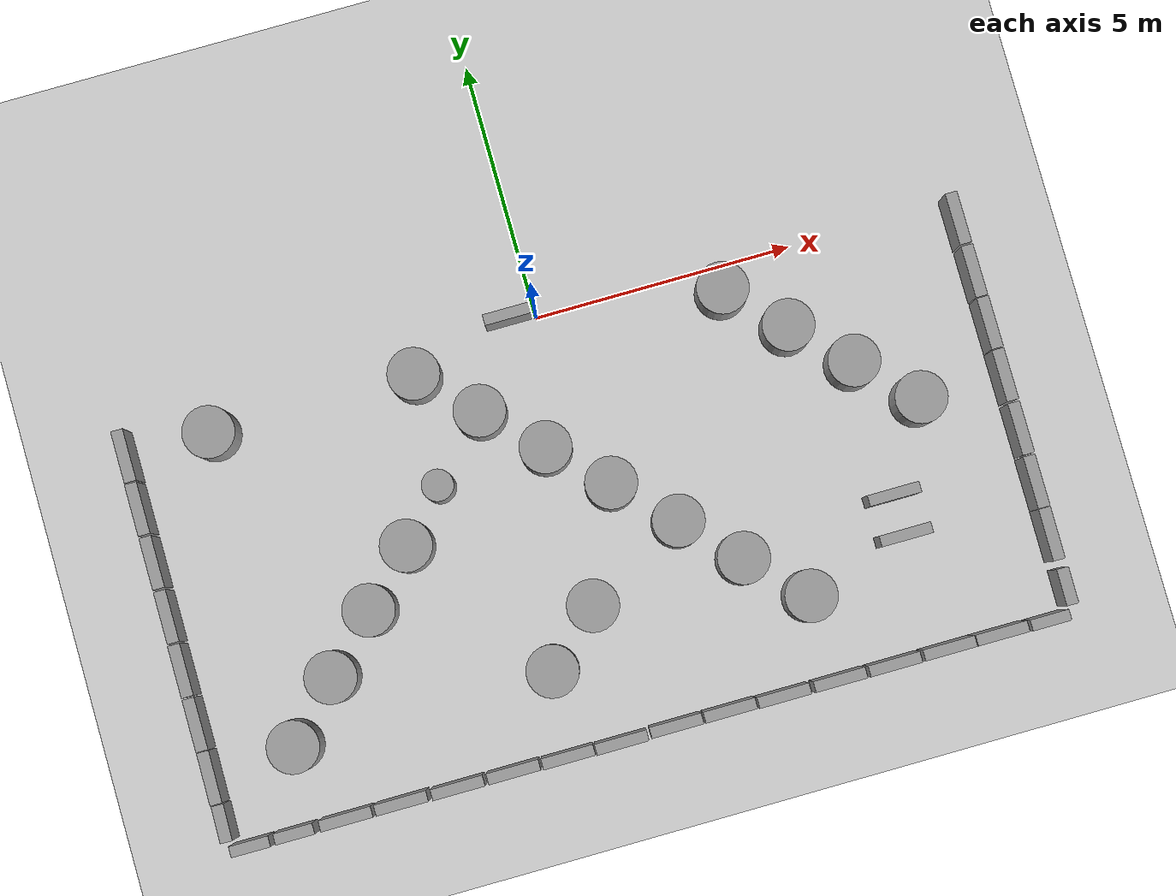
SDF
<sdf version="1.6">
 <world name="default">
  <model name="ground_plane">
   <static>1</static>
   <static>1</static>
   <link name="link">
    <collision name="collision">
     <geometry><plane><normal>0 0 1</normal><size>100 100</size></plane></geometry>
     <surface><friction><ode><mu>100</mu><mu2>50</mu2></ode></friction></surface>
    </collision>
    <visual name="visual">
     <cast_shadows>0</cast_shadows>
     <geometry><plane><normal>0 0 1</normal><size>100 100</size></plane></geometry>
     <material>
      <script><uri>file://media/materials/scripts/gazebo.material</uri><name>Gazebo/Grey</name></script>
     </material>
    </visual>
   </link>
  </model>
  <model name="unit_box_0_clone_7">
   <pose>8.11276 -0.44932 0.5 0 -0 0.00012</pose>
   <link name="link">
    <inertial>
     <mass>1</mass>
     <inertia>
      <ixx>0.166667</ixx>
      <ixy>0</ixy>
      <ixz>0</ixz>
      <iyy>0.166667</iyy>
      <iyz>0</iyz>
      <izz>0.166667</izz>
     </inertia>
    </inertial>
    <collision name="collision"><geometry><box><size>0.230819 1 1</size></box></geometry></collision>
    <visual name="visual">
     <geometry><box><size>0.230819 1 1</size></box></geometry>
     <material>
      <script><name>Gazebo/Grey</name><uri>file://media/materials/scripts/gazebo.material</uri></script>
     </material>
    </visual>
   </link>
  </model>
  <model name="unit_box_0_clone_8">
   <pose>8.11912 -1.48629 0.5 0 -0 0.00012</pose>
   <link name="link">
    <inertial>
     <mass>1</mass>
     <inertia>
      <ixx>0.166667</ixx>
      <ixy>0</ixy>
      <ixz>0</ixz>
      <iyy>0.166667</iyy>
      <iyz>0</iyz>
      <izz>0.166667</izz>
     </inertia>
    </inertial>
    <collision name="collision"><geometry><box><size>0.230819 1 1</size></box></geometry></collision>
    <visual name="visual">
     <geometry><box><size>0.230819 1 1</size></box></geometry>
     <material>
      <script><name>Gazebo/Grey</name><uri>file://media/materials/scripts/gazebo.material</uri></script>
     </material>
    </visual>
   </link>
  </model>
  <model name="unit_box_0_clone_9">
   <pose>8.12548 -2.5042 0.5 0 -0 0.00012</pose>
   <link name="link">
    <inertial>
     <mass>1</mass>
     <inertia>
      <ixx>0.166667</ixx>
      <ixy>0</ixy>
      <ixz>0</ixz>
      <iyy>0.166667</iyy>
      <iyz>0</iyz>
      <izz>0.166667</izz>
     </inertia>
    </inertial>
    <collision name="collision"><geometry><box><size>0.230819 1 1</size></box></geometry></collision>
    <visual name="visual">
     <geometry><box><size>0.230819 1 1</size></box></geometry>
     <material>
      <script><name>Gazebo/Grey</name><uri>file://media/materials/scripts/gazebo.material</uri></script>
     </material>
    </visual>
   </link>
  </model>
  <model name="unit_box_0_clone_10">
   <pose>8.12331 -3.52223 0.5 0 -0 0.00012</pose>
   <link name="link">
    <inertial>
     <mass>1</mass>
     <inertia>
      <ixx>0.166667</ixx>
      <ixy>0</ixy>
      <ixz>0</ixz>
      <iyy>0.166667</iyy>
      <iyz>0</iyz>
      <izz>0.166667</izz>
     </inertia>
    </inertial>
    <collision name="collision"><geometry><box><size>0.230819 1 1</size></box></geometry></collision>
    <visual name="visual">
     <geometry><box><size>0.230819 1 1</size></box></geometry>
     <material>
      <script><name>Gazebo/Grey</name><uri>file://media/materials/scripts/gazebo.material</uri></script>
     </material>
    </visual>
   </link>
  </model>
  <model name="unit_box_0_clone_11">
   <pose>8.1233 -4.56316 0.5 0 -0 0.00012</pose>
   <link name="link">
    <inertial>
     <mass>1</mass>
     <inertia>
      <ixx>0.166667</ixx>
      <ixy>0</ixy>
      <ixz>0</ixz>
      <iyy>0.166667</iyy>
      <iyz>0</iyz>
      <izz>0.166667</izz>
     </inertia>
    </inertial>
    <collision name="collision"><geometry><box><size>0.230819 1 1</size></box></geometry></collision>
    <visual name="visual">
     <geometry><box><size>0.230819 1 1</size></box></geometry>
     <material>
      <script><name>Gazebo/Grey</name><uri>file://media/materials/scripts/gazebo.material</uri></script>
     </material>
    </visual>
   </link>
  </model>
  <model name="unit_box_0_clone_12">
   <pose>8.11815 -5.59377 0.5 0 -0 0.00012</pose>
   <link name="link">
    <inertial>
     <mass>1</mass>
     <inertia>
      <ixx>0.166667</ixx>
      <ixy>0</ixy>
      <ixz>0</ixz>
      <iyy>0.166667</iyy>
      <iyz>0</iyz>
      <izz>0.166667</izz>
     </inertia>
    </inertial>
    <collision name="collision"><geometry><box><size>0.230819 1 1</size></box></geometry></collision>
    <visual name="visual">
     <geometry><box><size>0.230819 1 1</size></box></geometry>
     <material>
      <script><name>Gazebo/Grey</name><uri>file://media/materials/scripts/gazebo.material</uri></script>
     </material>
    </visual>
   </link>
  </model>
  <model name="unit_box_0_clone_13">
   <pose>8.11333 -6.60776 0.5 0 0 -0.005491</pose>
   <link name="link">
    <inertial>
     <mass>1</mass>
     <inertia>
      <ixx>0.166667</ixx>
      <ixy>0</ixy>
      <ixz>0</ixz>
      <iyy>0.166667</iyy>
      <iyz>0</iyz>
      <izz>0.166667</izz>
     </inertia>
    </inertial>
    <collision name="collision"><geometry><box><size>0.230819 1 1</size></box></geometry></collision>
    <visual name="visual">
     <geometry><box><size>0.230819 1 1</size></box></geometry>
     <material>
      <script><name>Gazebo/Grey</name><uri>file://media/materials/scripts/gazebo.material</uri></script>
     </material>
    </visual>
   </link>
  </model>
  <model name="unit_box_clone_15_clone_0">
   <pose>6.71207 -8.13092 0.5 0 -0 0.000357</pose>
   <link name="link">
    <inertial>
     <mass>1</mass>
     <inertia>
      <ixx>0.166667</ixx>
      <ixy>0</ixy>
      <ixz>0</ixz>
      <iyy>0.166667</iyy>
      <iyz>0</iyz>
      <izz>0.166667</izz>
     </inertia>
    </inertial>
    <collision name="collision"><geometry><box><size>1 0.210541 1</size></box></geometry></collision>
    <visual name="visual">
     <geometry><box><size>1 0.210541 1</size></box></geometry>
     <material>
      <script><name>Gazebo/Grey</name><uri>file://media/materials/scripts/gazebo.material</uri></script>
     </material>
    </visual>
   </link>
  </model>
  <model name="unit_box_clone_15_clone_1">
   <pose>5.69715 -8.13091 0.5 0 -0 0.000357</pose>
   <link name="link">
    <inertial>
     <mass>1</mass>
     <inertia>
      <ixx>0.166667</ixx>
      <ixy>0</ixy>
      <ixz>0</ixz>
      <iyy>0.166667</iyy>
      <iyz>0</iyz>
      <izz>0.166667</izz>
     </inertia>
    </inertial>
    <collision name="collision"><geometry><box><size>1 0.210541 1</size></box></geometry></collision>
    <visual name="visual">
     <geometry><box><size>1 0.210541 1</size></box></geometry>
     <material>
      <script><name>Gazebo/Grey</name><uri>file://media/materials/scripts/gazebo.material</uri></script>
     </material>
    </visual>
   </link>
  </model>
  <model name="unit_box_clone_15_clone_2">
   <pose>4.63881 -8.1371 0.5 0 -0 0.000357</pose>
   <link name="link">
    <inertial>
     <mass>1</mass>
     <inertia>
      <ixx>0.166667</ixx>
      <ixy>0</ixy>
      <ixz>0</ixz>
      <iyy>0.166667</iyy>
      <iyz>0</iyz>
      <izz>0.166667</izz>
     </inertia>
    </inertial>
    <collision name="collision"><geometry><box><size>1 0.210541 1</size></box></geometry></collision>
    <visual name="visual">
     <geometry><box><size>1 0.210541 1</size></box></geometry>
     <material>
      <script><name>Gazebo/Grey</name><uri>file://media/materials/scripts/gazebo.material</uri></script>
     </material>
    </visual>
   </link>
  </model>
  <model name="unit_box_clone_15_clone_3">
   <pose>3.57975 -8.1371 0.5 0 -0 0.000357</pose>
   <link name="link">
    <inertial>
     <mass>1</mass>
     <inertia>
      <ixx>0.166667</ixx>
      <ixy>0</ixy>
      <ixz>0</ixz>
      <iyy>0.166667</iyy>
      <iyz>0</iyz>
      <izz>0.166667</izz>
     </inertia>
    </inertial>
    <collision name="collision"><geometry><box><size>1 0.210541 1</size></box></geometry></collision>
    <visual name="visual">
     <geometry><box><size>1 0.210541 1</size></box></geometry>
     <material>
      <script><name>Gazebo/Grey</name><uri>file://media/materials/scripts/gazebo.material</uri></script>
     </material>
    </visual>
   </link>
  </model>
  <model name="unit_box_clone_15_clone_4">
   <pose>2.49815 -8.13709 0.5 0 -0 0.000357</pose>
   <link name="link">
    <inertial>
     <mass>1</mass>
     <inertia>
      <ixx>0.166667</ixx>
      <ixy>0</ixy>
      <ixz>0</ixz>
      <iyy>0.166667</iyy>
      <iyz>0</iyz>
      <izz>0.166667</izz>
     </inertia>
    </inertial>
    <collision name="collision"><geometry><box><size>1 0.210541 1</size></box></geometry></collision>
    <visual name="visual">
     <geometry><box><size>1 0.210541 1</size></box></geometry>
     <material>
      <script><name>Gazebo/Grey</name><uri>file://media/materials/scripts/gazebo.material</uri></script>
     </material>
    </visual>
   </link>
  </model>
  <model name="unit_box_clone_15_clone_5">
   <pose>1.46162 -8.12581 0.5 0 -0 0.000357</pose>
   <link name="link">
    <inertial>
     <mass>1</mass>
     <inertia>
      <ixx>0.166667</ixx>
      <ixy>0</ixy>
      <ixz>0</ixz>
      <iyy>0.166667</iyy>
      <iyz>0</iyz>
      <izz>0.166667</izz>
     </inertia>
    </inertial>
    <collision name="collision"><geometry><box><size>1 0.210541 1</size></box></geometry></collision>
    <visual name="visual">
     <geometry><box><size>1 0.210541 1</size></box></geometry>
     <material>
      <script><name>Gazebo/Grey</name><uri>file://media/materials/scripts/gazebo.material</uri></script>
     </material>
    </visual>
   </link>
  </model>
  <model name="unit_box_clone_15_clone_6">
   <pose>0.425087 -8.1258 0.5 0 -0 0.000357</pose>
   <link name="link">
    <inertial>
     <mass>1</mass>
     <inertia>
      <ixx>0.166667</ixx>
      <ixy>0</ixy>
      <ixz>0</ixz>
      <iyy>0.166667</iyy>
      <iyz>0</iyz>
      <izz>0.166667</izz>
     </inertia>
    </inertial>
    <collision name="collision"><geometry><box><size>1 0.210541 1</size></box></geometry></collision>
    <visual name="visual">
     <geometry><box><size>1 0.210541 1</size></box></geometry>
     <material>
      <script><name>Gazebo/Grey</name><uri>file://media/materials/scripts/gazebo.material</uri></script>
     </material>
    </visual>
   </link>
  </model>
  <model name="unit_box_clone_15_clone_7">
   <pose>-0.633975 -8.14836 0.5 0 -0 0.000357</pose>
   <link name="link">
    <inertial>
     <mass>1</mass>
     <inertia>
      <ixx>0.166667</ixx>
      <ixy>0</ixy>
      <ixz>0</ixz>
      <iyy>0.166667</iyy>
      <iyz>0</iyz>
      <izz>0.166667</izz>
     </inertia>
    </inertial>
    <collision name="collision"><geometry><box><size>1 0.210541 1</size></box></geometry></collision>
    <visual name="visual">
     <geometry><box><size>1 0.210541 1</size></box></geometry>
     <material>
      <script><name>Gazebo/Grey</name><uri>file://media/materials/scripts/gazebo.material</uri></script>
     </material>
    </visual>
   </link>
  </model>
  <model name="unit_box_clone_15_clone_8">
   <pose>-1.65923 -8.13707 0.5 0 -0 0.000357</pose>
   <link name="link">
    <inertial>
     <mass>1</mass>
     <inertia>
      <ixx>0.166667</ixx>
      <ixy>0</ixy>
      <ixz>0</ixz>
      <iyy>0.166667</iyy>
      <iyz>0</iyz>
      <izz>0.166667</izz>
     </inertia>
    </inertial>
    <collision name="collision"><geometry><box><size>1 0.210541 1</size></box></geometry></collision>
    <visual name="visual">
     <geometry><box><size>1 0.210541 1</size></box></geometry>
     <material>
      <script><name>Gazebo/Grey</name><uri>file://media/materials/scripts/gazebo.material</uri></script>
     </material>
    </visual>
   </link>
  </model>
  <model name="unit_box_clone_15_clone_9">
   <pose>-2.70703 -8.12583 0.5 0 -0 0.000357</pose>
   <link name="link">
    <inertial>
     <mass>1</mass>
     <inertia>
      <ixx>0.166667</ixx>
      <ixy>0</ixy>
      <ixz>0</ixz>
      <iyy>0.166667</iyy>
      <iyz>0</iyz>
      <izz>0.166667</izz>
     </inertia>
    </inertial>
    <collision name="collision"><geometry><box><size>1 0.210541 1</size></box></geometry></collision>
    <visual name="visual">
     <geometry><box><size>1 0.210541 1</size></box></geometry>
     <material>
      <script><name>Gazebo/Grey</name><uri>file://media/materials/scripts/gazebo.material</uri></script>
     </material>
    </visual>
   </link>
  </model>
  <model name="unit_box_clone_15_clone_10">
   <pose>-3.77736 -8.12581 0.5 0 -0 0.000357</pose>
   <link name="link">
    <inertial>
     <mass>1</mass>
     <inertia>
      <ixx>0.166667</ixx>
      <ixy>0</ixy>
      <ixz>0</ixz>
      <iyy>0.166667</iyy>
      <iyz>0</iyz>
      <izz>0.166667</izz>
     </inertia>
    </inertial>
    <collision name="collision"><geometry><box><size>1 0.210541 1</size></box></geometry></collision>
    <visual name="visual">
     <geometry><box><size>1 0.210541 1</size></box></geometry>
     <material>
      <script><name>Gazebo/Grey</name><uri>file://media/materials/scripts/gazebo.material</uri></script>
     </material>
    </visual>
   </link>
  </model>
  <model name="unit_box_clone_15_clone_11">
   <pose>-4.85896 -8.11455 0.5 0 -0 0.000357</pose>
   <link name="link">
    <inertial>
     <mass>1</mass>
     <inertia>
      <ixx>0.166667</ixx>
      <ixy>0</ixy>
      <ixz>0</ixz>
      <iyy>0.166667</iyy>
      <iyz>0</iyz>
      <izz>0.166667</izz>
     </inertia>
    </inertial>
    <collision name="collision"><geometry><box><size>1 0.210541 1</size></box></geometry></collision>
    <visual name="visual">
     <geometry><box><size>1 0.210541 1</size></box></geometry>
     <material>
      <script><name>Gazebo/Grey</name><uri>file://media/materials/scripts/gazebo.material</uri></script>
     </material>
    </visual>
   </link>
  </model>
  <model name="unit_box_clone_15_clone_12">
   <pose>-5.91802 -8.11454 0.5 0 -0 0.000357</pose>
   <link name="link">
    <inertial>
     <mass>1</mass>
     <inertia>
      <ixx>0.166667</ixx>
      <ixy>0</ixy>
      <ixz>0</ixz>
      <iyy>0.166667</iyy>
      <iyz>0</iyz>
      <izz>0.166667</izz>
     </inertia>
    </inertial>
    <collision name="collision"><geometry><box><size>1 0.210541 1</size></box></geometry></collision>
    <visual name="visual">
     <geometry><box><size>1 0.210541 1</size></box></geometry>
     <material>
      <script><name>Gazebo/Grey</name><uri>file://media/materials/scripts/gazebo.material</uri></script>
     </material>
    </visual>
   </link>
  </model>
  <model name="unit_box_0_clone_4_clone_7">
   <pose>-8.12609 -0.518034 0.5 0 -0 0.00012</pose>
   <link name="link">
    <inertial>
     <mass>1</mass>
     <inertia>
      <ixx>0.166667</ixx>
      <ixy>0</ixy>
      <ixz>0</ixz>
      <iyy>0.166667</iyy>
      <iyz>0</iyz>
      <izz>0.166667</izz>
     </inertia>
    </inertial>
    <collision name="collision"><geometry><box><size>0.230819 1 1</size></box></geometry></collision>
    <visual name="visual">
     <geometry><box><size>0.230819 1 1</size></box></geometry>
     <material>
      <script><name>Gazebo/Grey</name><uri>file://media/materials/scripts/gazebo.material</uri></script>
     </material>
    </visual>
   </link>
  </model>
  <model name="unit_box_0_clone_4_clone_8">
   <pose>-8.13284 -1.54445 0.5 0 -0 0.00012</pose>
   <link name="link">
    <inertial>
     <mass>1</mass>
     <inertia>
      <ixx>0.166667</ixx>
      <ixy>0</ixy>
      <ixz>0</ixz>
      <iyy>0.166667</iyy>
      <iyz>0</iyz>
      <izz>0.166667</izz>
     </inertia>
    </inertial>
    <collision name="collision"><geometry><box><size>0.230819 1 1</size></box></geometry></collision>
    <visual name="visual">
     <geometry><box><size>0.230819 1 1</size></box></geometry>
     <material>
      <script><name>Gazebo/Grey</name><uri>file://media/materials/scripts/gazebo.material</uri></script>
     </material>
    </visual>
   </link>
  </model>
  <model name="unit_box_0_clone_4_clone_9">
   <pose>-8.13285 -2.58439 0.5 0 -0 0.00012</pose>
   <link name="link">
    <inertial>
     <mass>1</mass>
     <inertia>
      <ixx>0.166667</ixx>
      <ixy>0</ixy>
      <ixz>0</ixz>
      <iyy>0.166667</iyy>
      <iyz>0</iyz>
      <izz>0.166667</izz>
     </inertia>
    </inertial>
    <collision name="collision"><geometry><box><size>0.230819 1 1</size></box></geometry></collision>
    <visual name="visual">
     <geometry><box><size>0.230819 1 1</size></box></geometry>
     <material>
      <script><name>Gazebo/Grey</name><uri>file://media/materials/scripts/gazebo.material</uri></script>
     </material>
    </visual>
   </link>
  </model>
  <model name="unit_box_0_clone_4_clone_10">
   <pose>-8.13285 -3.62431 0.5 0 -0 0.00012</pose>
   <link name="link">
    <inertial>
     <mass>1</mass>
     <inertia>
      <ixx>0.166667</ixx>
      <ixy>0</ixy>
      <ixz>0</ixz>
      <iyy>0.166667</iyy>
      <iyz>0</iyz>
      <izz>0.166667</izz>
     </inertia>
    </inertial>
    <collision name="collision"><geometry><box><size>0.230819 1 1</size></box></geometry></collision>
    <visual name="visual">
     <geometry><box><size>0.230819 1 1</size></box></geometry>
     <material>
      <script><name>Gazebo/Grey</name><uri>file://media/materials/scripts/gazebo.material</uri></script>
     </material>
    </visual>
   </link>
  </model>
  <model name="unit_box_0_clone_4_clone_11">
   <pose>-8.1396 -4.65747 0.5 0 -0 0.00012</pose>
   <link name="link">
    <inertial>
     <mass>1</mass>
     <inertia>
      <ixx>0.166667</ixx>
      <ixy>0</ixy>
      <ixz>0</ixz>
      <iyy>0.166667</iyy>
      <iyz>0</iyz>
      <izz>0.166667</izz>
     </inertia>
    </inertial>
    <collision name="collision"><geometry><box><size>0.230819 1 1</size></box></geometry></collision>
    <visual name="visual">
     <geometry><box><size>0.230819 1 1</size></box></geometry>
     <material>
      <script><name>Gazebo/Grey</name><uri>file://media/materials/scripts/gazebo.material</uri></script>
     </material>
    </visual>
   </link>
  </model>
  <model name="unit_box_0_clone_4_clone_12">
   <pose>-8.1396 -5.69064 0.5 0 -0 0.00012</pose>
   <link name="link">
    <inertial>
     <mass>1</mass>
     <inertia>
      <ixx>0.166667</ixx>
      <ixy>0</ixy>
      <ixz>0</ixz>
      <iyy>0.166667</iyy>
      <iyz>0</iyz>
      <izz>0.166667</izz>
     </inertia>
    </inertial>
    <collision name="collision"><geometry><box><size>0.230819 1 1</size></box></geometry></collision>
    <visual name="visual">
     <geometry><box><size>0.230819 1 1</size></box></geometry>
     <material>
      <script><name>Gazebo/Grey</name><uri>file://media/materials/scripts/gazebo.material</uri></script>
     </material>
    </visual>
   </link>
  </model>
  <model name="unit_box_0_clone_4_clone_13">
   <pose>-8.14113 -6.70873 0.499997 -6e-06 1e-06 -0.008612</pose>
   <link name="link">
    <inertial>
     <mass>1</mass>
     <inertia>
      <ixx>0.166667</ixx>
      <ixy>0</ixy>
      <ixz>0</ixz>
      <iyy>0.166667</iyy>
      <iyz>0</iyz>
      <izz>0.166667</izz>
     </inertia>
    </inertial>
    <collision name="collision"><geometry><box><size>0.230819 1 1</size></box></geometry></collision>
    <visual name="visual">
     <geometry><box><size>0.230819 1 1</size></box></geometry>
     <material>
      <script><name>Gazebo/Grey</name><uri>file://media/materials/scripts/gazebo.material</uri></script>
     </material>
    </visual>
   </link>
  </model>
  <model name="unit_box_clone_11_clone_1_clone_0">
   <pose>-6.90881 -8.11956 0.499997 -2e-06 -7e-06 -0.001382</pose>
   <link name="link">
    <inertial>
     <mass>1</mass>
     <inertia>
      <ixx>0.166667</ixx>
      <ixy>0</ixy>
      <ixz>0</ixz>
      <iyy>0.166667</iyy>
      <iyz>0</iyz>
      <izz>0.166667</izz>
     </inertia>
    </inertial>
    <collision name="collision"><geometry><box><size>0.750223 0.210541 1</size></box></geometry></collision>
    <visual name="visual">
     <geometry><box><size>0.750223 0.210541 1</size></box></geometry>
     <material>
      <script><name>Gazebo/Grey</name><uri>file://media/materials/scripts/gazebo.material</uri></script>
     </material>
    </visual>
   </link>
  </model>
  <model name="unit_box_0_clone_4_clone_13_clone_clone">
   <pose>-8.13833 -7.5766 0.500001 1e-06 -0 -0.017947</pose>
   <link name="link">
    <inertial>
     <mass>1</mass>
     <inertia>
      <ixx>0.166667</ixx>
      <ixy>0</ixy>
      <ixz>0</ixz>
      <iyy>0.166667</iyy>
      <iyz>0</iyz>
      <izz>0.166667</izz>
     </inertia>
    </inertial>
    <collision name="collision"><geometry><box><size>0.230819 0.700336 1</size></box></geometry></collision>
    <visual name="visual">
     <geometry><box><size>0.230819 0.700336 1</size></box></geometry>
     <material>
      <script><name>Gazebo/Grey</name><uri>file://media/materials/scripts/gazebo.material</uri></script>
     </material>
    </visual>
   </link>
  </model>
  <model name="unit_box_clone_11_clone_1_clone_0_clone">
   <pose>-7.75475 -8.12201 0.499997 3e-06 -8e-06 -0.004396</pose>
   <link name="link">
    <inertial>
     <mass>1</mass>
     <inertia>
      <ixx>0.166667</ixx>
      <ixy>0</ixy>
      <ixz>0</ixz>
      <iyy>0.166667</iyy>
      <iyz>0</iyz>
      <izz>0.166667</izz>
     </inertia>
    </inertial>
    <collision name="collision"><geometry><box><size>0.750223 0.210541 1</size></box></geometry></collision>
    <visual name="visual">
     <geometry><box><size>0.750223 0.210541 1</size></box></geometry>
     <material>
      <script><name>Gazebo/Grey</name><uri>file://media/materials/scripts/gazebo.material</uri></script>
     </material>
    </visual>
   </link>
  </model>
  <model name="unit_box_clone_11_clone_1_clone_2">
   <pose>7.64248 -8.13928 0.5 0 -1e-06 -3.9e-05</pose>
   <link name="link">
    <inertial>
     <mass>1</mass>
     <inertia>
      <ixx>0.166667</ixx>
      <ixy>0</ixy>
      <ixz>0</ixz>
      <iyy>0.166667</iyy>
      <iyz>0</iyz>
      <izz>0.166667</izz>
     </inertia>
    </inertial>
    <collision name="collision"><geometry><box><size>0.750223 0.210541 1</size></box></geometry></collision>
    <visual name="visual">
     <geometry><box><size>0.750223 0.210541 1</size></box></geometry>
     <material>
      <script><name>Gazebo/Grey</name><uri>file://media/materials/scripts/gazebo.material</uri></script>
     </material>
    </visual>
   </link>
  </model>
  <model name="unit_box_0_clone_4_clone_13_clone_clone_clone">
   <pose>8.11858 -7.62155 0.499997 7e-06 2e-06 -0.00768</pose>
   <link name="link">
    <inertial>
     <mass>1</mass>
     <inertia>
      <ixx>0.166667</ixx>
      <ixy>0</ixy>
      <ixz>0</ixz>
      <iyy>0.166667</iyy>
      <iyz>0</iyz>
      <izz>0.166667</izz>
     </inertia>
    </inertial>
    <collision name="collision"><geometry><box><size>0.230819 0.700336 1</size></box></geometry></collision>
    <visual name="visual">
     <geometry><box><size>0.230819 0.700336 1</size></box></geometry>
     <material>
      <script><name>Gazebo/Grey</name><uri>file://media/materials/scripts/gazebo.material</uri></script>
     </material>
    </visual>
   </link>
  </model>
  <model name="unit_cylinder_clone_0_clone_clone_5">
   <pose>3.4933 -0.514717 0.499993 -3e-06 -1e-06 -0</pose>
   <link name="link">
    <inertial>
     <mass>1</mass>
     <inertia><ixx>0.145833</ixx><ixy>0</ixy><ixz>0</ixz><iyy>0.145833</iyy><iyz>0</iyz><izz>0.125</izz></inertia>
    </inertial>
    <collision name="collision">
     <geometry><cylinder><radius>0.5</radius><length>1</length></cylinder></geometry>
    </collision>
    <visual name="visual">
     <geometry><cylinder><radius>0.5</radius><length>1</length></cylinder></geometry>
     <material>
      <script><name>Gazebo/Grey</name><uri>file://media/materials/scripts/gazebo.material</uri></script>
     </material>
    </visual>
   </link>
  </model>
  <model name="unit_cylinder_clone_0_clone_clone_6">
   <pose>4.48548 -1.52099 0.499997 3e-06 1e-06 -0</pose>
   <link name="link">
    <inertial>
     <mass>1</mass>
     <inertia><ixx>0.145833</ixx><ixy>0</ixy><ixz>0</ixz><iyy>0.145833</iyy><iyz>0</iyz><izz>0.125</izz></inertia>
    </inertial>
    <collision name="collision">
     <geometry><cylinder><radius>0.5</radius><length>1</length></cylinder></geometry>
    </collision>
    <visual name="visual">
     <geometry><cylinder><radius>0.5</radius><length>1</length></cylinder></geometry>
     <material>
      <script><name>Gazebo/Grey</name><uri>file://media/materials/scripts/gazebo.material</uri></script>
     </material>
    </visual>
   </link>
  </model>
  <model name="unit_cylinder_clone_0_clone_clone_7">
   <pose>5.48471 -2.49912 0.499993 -3e-06 -1e-06 -0</pose>
   <link name="link">
    <inertial>
     <mass>1</mass>
     <inertia><ixx>0.145833</ixx><ixy>0</ixy><ixz>0</ixz><iyy>0.145833</iyy><iyz>0</iyz><izz>0.125</izz></inertia>
    </inertial>
    <collision name="collision">
     <geometry><cylinder><radius>0.5</radius><length>1</length></cylinder></geometry>
    </collision>
    <visual name="visual">
     <geometry><cylinder><radius>0.5</radius><length>1</length></cylinder></geometry>
     <material>
      <script><name>Gazebo/Grey</name><uri>file://media/materials/scripts/gazebo.material</uri></script>
     </material>
    </visual>
   </link>
  </model>
  <model name="unit_cylinder_clone_0_clone_clone_8">
   <pose>6.49801 -3.49836 0.499997 3e-06 1e-06 -0</pose>
   <link name="link">
    <inertial>
     <mass>1</mass>
     <inertia><ixx>0.145833</ixx><ixy>0</ixy><ixz>0</ixz><iyy>0.145833</iyy><iyz>0</iyz><izz>0.125</izz></inertia>
    </inertial>
    <collision name="collision">
     <geometry><cylinder><radius>0.5</radius><length>1</length></cylinder></geometry>
    </collision>
    <visual name="visual">
     <geometry><cylinder><radius>0.5</radius><length>1</length></cylinder></geometry>
     <material>
      <script><name>Gazebo/Grey</name><uri>file://media/materials/scripts/gazebo.material</uri></script>
     </material>
    </visual>
   </link>
  </model>
  <model name="unit_cylinder_clone_0_clone_clone_12">
   <pose>-2.51401 -0.501558 0.499997 4e-06 3e-06 -0</pose>
   <link name="link">
    <inertial>
     <mass>1</mass>
     <inertia><ixx>0.145833</ixx><ixy>0</ixy><ixz>0</ixz><iyy>0.145833</iyy><iyz>0</iyz><izz>0.125</izz></inertia>
    </inertial>
    <collision name="collision">
     <geometry><cylinder><radius>0.5</radius><length>1</length></cylinder></geometry>
    </collision>
    <visual name="visual">
     <geometry><cylinder><radius>0.5</radius><length>1</length></cylinder></geometry>
     <material>
      <script><name>Gazebo/Grey</name><uri>file://media/materials/scripts/gazebo.material</uri></script>
     </material>
    </visual>
   </link>
  </model>
  <model name="unit_cylinder_clone_0_clone_clone_13">
   <pose>-1.51144 -1.50413 0.499994 -4e-06 -3e-06 -0</pose>
   <link name="link">
    <inertial>
     <mass>1</mass>
     <inertia><ixx>0.145833</ixx><ixy>0</ixy><ixz>0</ixz><iyy>0.145833</iyy><iyz>0</iyz><izz>0.125</izz></inertia>
    </inertial>
    <collision name="collision">
     <geometry><cylinder><radius>0.5</radius><length>1</length></cylinder></geometry>
    </collision>
    <visual name="visual">
     <geometry><cylinder><radius>0.5</radius><length>1</length></cylinder></geometry>
     <material>
      <script><name>Gazebo/Grey</name><uri>file://media/materials/scripts/gazebo.material</uri></script>
     </material>
    </visual>
   </link>
  </model>
  <model name="unit_cylinder_clone_0_clone_clone_14">
   <pose>-0.508881 -2.49448 0.499993 -3e-06 -0 -0</pose>
   <link name="link">
    <inertial>
     <mass>1</mass>
     <inertia><ixx>0.145833</ixx><ixy>0</ixy><ixz>0</ixz><iyy>0.145833</iyy><iyz>0</iyz><izz>0.125</izz></inertia>
    </inertial>
    <collision name="collision">
     <geometry><cylinder><radius>0.5</radius><length>1</length></cylinder></geometry>
    </collision>
    <visual name="visual">
     <geometry><cylinder><radius>0.5</radius><length>1</length></cylinder></geometry>
     <material>
      <script><name>Gazebo/Grey</name><uri>file://media/materials/scripts/gazebo.material</uri></script>
     </material>
    </visual>
   </link>
  </model>
  <model name="unit_cylinder_clone_0_clone_clone_15">
   <pose>0.487568 -3.46649 0.499994 -4e-06 -3e-06 -0</pose>
   <link name="link">
    <inertial>
     <mass>1</mass>
     <inertia><ixx>0.145833</ixx><ixy>0</ixy><ixz>0</ixz><iyy>0.145833</iyy><iyz>0</iyz><izz>0.125</izz></inertia>
    </inertial>
    <collision name="collision">
     <geometry><cylinder><radius>0.5</radius><length>1</length></cylinder></geometry>
    </collision>
    <visual name="visual">
     <geometry><cylinder><radius>0.5</radius><length>1</length></cylinder></geometry>
     <material>
      <script><name>Gazebo/Grey</name><uri>file://media/materials/scripts/gazebo.material</uri></script>
     </material>
    </visual>
   </link>
  </model>
  <model name="unit_cylinder_clone_0_clone_clone_16">
   <pose>1.50236 -4.4874 0.499997 4e-06 4e-06 -0</pose>
   <link name="link">
    <inertial>
     <mass>1</mass>
     <inertia><ixx>0.145833</ixx><ixy>0</ixy><ixz>0</ixz><iyy>0.145833</iyy><iyz>0</iyz><izz>0.125</izz></inertia>
    </inertial>
    <collision name="collision">
     <geometry><cylinder><radius>0.5</radius><length>1</length></cylinder></geometry>
    </collision>
    <visual name="visual">
     <geometry><cylinder><radius>0.5</radius><length>1</length></cylinder></geometry>
     <material>
      <script><name>Gazebo/Grey</name><uri>file://media/materials/scripts/gazebo.material</uri></script>
     </material>
    </visual>
   </link>
  </model>
  <model name="unit_cylinder_clone_0_clone_clone_17">
   <pose>2.48047 -5.48386 0.499993 -2e-06 -1e-06 0</pose>
   <link name="link">
    <inertial>
     <mass>1</mass>
     <inertia><ixx>0.145833</ixx><ixy>0</ixy><ixz>0</ixz><iyy>0.145833</iyy><iyz>0</iyz><izz>0.125</izz></inertia>
    </inertial>
    <collision name="collision">
     <geometry><cylinder><radius>0.5</radius><length>1</length></cylinder></geometry>
    </collision>
    <visual name="visual">
     <geometry><cylinder><radius>0.5</radius><length>1</length></cylinder></geometry>
     <material>
      <script><name>Gazebo/Grey</name><uri>file://media/materials/scripts/gazebo.material</uri></script>
     </material>
    </visual>
   </link>
  </model>
  <model name="unit_cylinder_clone_0_clone_clone_18">
   <pose>3.49526 -6.49866 0.499992 -3e-06 -4e-06 -0</pose>
   <link name="link">
    <inertial>
     <mass>1</mass>
     <inertia><ixx>0.145833</ixx><ixy>0</ixy><ixz>0</ixz><iyy>0.145833</iyy><iyz>0</iyz><izz>0.125</izz></inertia>
    </inertial>
    <collision name="collision">
     <geometry><cylinder><radius>0.5</radius><length>1</length></cylinder></geometry>
    </collision>
    <visual name="visual">
     <geometry><cylinder><radius>0.5</radius><length>1</length></cylinder></geometry>
     <material>
      <script><name>Gazebo/Grey</name><uri>file://media/materials/scripts/gazebo.material</uri></script>
     </material>
    </visual>
   </link>
  </model>
  <model name="unit_cylinder_clone_0_clone_clone_20">
   <pose>-6.50538 -6.5814 0.499993 -2e-06 -1e-06 0</pose>
   <link name="link">
    <inertial>
     <mass>1</mass>
     <inertia><ixx>0.145833</ixx><ixy>0</ixy><ixz>0</ixz><iyy>0.145833</iyy><iyz>0</iyz><izz>0.125</izz></inertia>
    </inertial>
    <collision name="collision">
     <geometry><cylinder><radius>0.5</radius><length>1</length></cylinder></geometry>
    </collision>
    <visual name="visual">
     <geometry><cylinder><radius>0.5</radius><length>1</length></cylinder></geometry>
     <material>
      <script><name>Gazebo/Grey</name><uri>file://media/materials/scripts/gazebo.material</uri></script>
     </material>
    </visual>
   </link>
  </model>
  <model name="unit_cylinder_clone_0_clone_clone_21">
   <pose>-5.49761 -5.53164 0.499996 4e-06 3e-06 -0</pose>
   <link name="link">
    <inertial>
     <mass>1</mass>
     <inertia><ixx>0.145833</ixx><ixy>0</ixy><ixz>0</ixz><iyy>0.145833</iyy><iyz>0</iyz><izz>0.125</izz></inertia>
    </inertial>
    <collision name="collision">
     <geometry><cylinder><radius>0.5</radius><length>1</length></cylinder></geometry>
    </collision>
    <visual name="visual">
     <geometry><cylinder><radius>0.5</radius><length>1</length></cylinder></geometry>
     <material>
      <script><name>Gazebo/Grey</name><uri>file://media/materials/scripts/gazebo.material</uri></script>
     </material>
    </visual>
   </link>
  </model>
  <model name="unit_cylinder_clone_0_clone_clone_22">
   <pose>-4.48983 -4.52388 0.499996 4e-06 3e-06 -0</pose>
   <link name="link">
    <inertial>
     <mass>1</mass>
     <inertia><ixx>0.145833</ixx><ixy>0</ixy><ixz>0</ixz><iyy>0.145833</iyy><iyz>0</iyz><izz>0.125</izz></inertia>
    </inertial>
    <collision name="collision">
     <geometry><cylinder><radius>0.5</radius><length>1</length></cylinder></geometry>
    </collision>
    <visual name="visual">
     <geometry><cylinder><radius>0.5</radius><length>1</length></cylinder></geometry>
     <material>
      <script><name>Gazebo/Grey</name><uri>file://media/materials/scripts/gazebo.material</uri></script>
     </material>
    </visual>
   </link>
  </model>
  <model name="unit_cylinder_clone_0_clone_clone_23">
   <pose>-3.50305 -3.5581 0.499994 -4e-06 -4e-06 -0</pose>
   <link name="link">
    <inertial>
     <mass>1</mass>
     <inertia><ixx>0.145833</ixx><ixy>0</ixy><ixz>0</ixz><iyy>0.145833</iyy><iyz>0</iyz><izz>0.125</izz></inertia>
    </inertial>
    <collision name="collision">
     <geometry><cylinder><radius>0.5</radius><length>1</length></cylinder></geometry>
    </collision>
    <visual name="visual">
     <geometry><cylinder><radius>0.5</radius><length>1</length></cylinder></geometry>
     <material>
      <script><name>Gazebo/Grey</name><uri>file://media/materials/scripts/gazebo.material</uri></script>
     </material>
    </visual>
   </link>
  </model>
  <model name="unit_cylinder_clone_0_clone_clone_24">
   <pose>-1.50852 -6.53943 0.499998 3e-06 -2e-06 0</pose>
   <link name="link">
    <inertial>
     <mass>1</mass>
     <inertia><ixx>0.145833</ixx><ixy>0</ixy><ixz>0</ixz><iyy>0.145833</iyy><iyz>0</iyz><izz>0.125</izz></inertia>
    </inertial>
    <collision name="collision">
     <geometry><cylinder><radius>0.5</radius><length>1</length></cylinder></geometry>
    </collision>
    <visual name="visual">
     <geometry><cylinder><radius>0.5</radius><length>1</length></cylinder></geometry>
     <material>
      <script><name>Gazebo/Grey</name><uri>file://media/materials/scripts/gazebo.material</uri></script>
     </material>
    </visual>
   </link>
  </model>
  <model name="unit_cylinder_clone_0_clone_clone_25">
   <pose>-0.45876 -5.57366 0.499993 -3e-06 -1e-06 -0</pose>
   <link name="link">
    <inertial>
     <mass>1</mass>
     <inertia><ixx>0.145833</ixx><ixy>0</ixy><ixz>0</ixz><iyy>0.145833</iyy><iyz>0</iyz><izz>0.125</izz></inertia>
    </inertial>
    <collision name="collision">
     <geometry><cylinder><radius>0.5</radius><length>1</length></cylinder></geometry>
    </collision>
    <visual name="visual">
     <geometry><cylinder><radius>0.5</radius><length>1</length></cylinder></geometry>
     <material>
      <script><name>Gazebo/Grey</name><uri>file://media/materials/scripts/gazebo.material</uri></script>
     </material>
    </visual>
   </link>
  </model>
  <model name="unit_cylinder_clone_0_clone_clone_26">
   <pose>-6.48435 -0.513784 0.499992 -3e-06 2e-06 0</pose>
   <link name="link">
    <inertial>
     <mass>1</mass>
     <inertia><ixx>0.145833</ixx><ixy>0</ixy><ixz>0</ixz><iyy>0.145833</iyy><iyz>0</iyz><izz>0.125</izz></inertia>
    </inertial>
    <collision name="collision">
     <geometry><cylinder><radius>0.5</radius><length>1</length></cylinder></geometry>
    </collision>
    <visual name="visual">
     <geometry><cylinder><radius>0.5</radius><length>1</length></cylinder></geometry>
     <material>
      <script><name>Gazebo/Grey</name><uri>file://media/materials/scripts/gazebo.material</uri></script>
     </material>
    </visual>
   </link>
  </model>
  <model name="unit_box_clone_5_clone_0">
   <pose>-0.482195 0.110193 0.499996 -1e-06 9e-06 0.000304</pose>
   <link name="link">
    <inertial>
     <mass>1</mass>
     <inertia>
      <ixx>0.166667</ixx>
      <ixy>0</ixy>
      <ixz>0</ixz>
      <iyy>0.166667</iyy>
      <iyz>0</iyz>
      <izz>0.166667</izz>
     </inertia>
    </inertial>
    <collision name="collision"><geometry><box><size>1 0.210541 1</size></box></geometry></collision>
    <visual name="visual">
     <geometry><box><size>1 0.210541 1</size></box></geometry>
     <material>
      <script><name>Gazebo/Grey</name><uri>file://media/materials/scripts/gazebo.material</uri></script>
     </material>
    </visual>
   </link>
  </model>
  <model name="unit_box_clone_5_clone_3">
   <pose>5.50798 -5.88329 0.499996 -1e-06 -9e-06 0.000339</pose>
   <link name="link">
    <inertial>
     <mass>1</mass>
     <inertia>
      <ixx>0.166667</ixx>
      <ixy>0</ixy>
      <ixz>0</ixz>
      <iyy>0.166667</iyy>
      <iyz>0</iyz>
      <izz>0.166667</izz>
     </inertia>
    </inertial>
    <collision name="collision"><geometry><box><size>1 0.210541 1</size></box></geometry></collision>
    <visual name="visual">
     <geometry><box><size>1 0.210541 1</size></box></geometry>
     <material>
      <script><name>Gazebo/Grey</name><uri>file://media/materials/scripts/gazebo.material</uri></script>
     </material>
    </visual>
   </link>
  </model>
  <model name="unit_box_clone_5_clone_4">
   <pose>5.50798 -5.09975 0.499996 -1e-06 -9e-06 0.000299</pose>
   <link name="link">
    <inertial>
     <mass>1</mass>
     <inertia>
      <ixx>0.166667</ixx>
      <ixy>0</ixy>
      <ixz>0</ixz>
      <iyy>0.166667</iyy>
      <iyz>0</iyz>
      <izz>0.166667</izz>
     </inertia>
    </inertial>
    <collision name="collision"><geometry><box><size>1 0.210541 1</size></box></geometry></collision>
    <visual name="visual">
     <geometry><box><size>1 0.210541 1</size></box></geometry>
     <material>
      <script><name>Gazebo/Grey</name><uri>file://media/materials/scripts/gazebo.material</uri></script>
     </material>
    </visual>
   </link>
  </model>
  <model name="unit_cylinder_clone_0_clone_clone_26_clone_clone">
   <pose>-2.63684 -2.63481 0.499992 -2e-06 2e-06 -0</pose>
   <link name="link">
    <inertial>
     <mass>1</mass>
     <inertia><ixx>0.145833</ixx><ixy>0</ixy><ixz>0</ixz><iyy>0.145833</iyy><iyz>0</iyz><izz>0.125</izz></inertia>
    </inertial>
    <collision name="collision">
     <geometry><cylinder><radius>0.306333</radius><length>1</length></cylinder></geometry>
    </collision>
    <visual name="visual">
     <geometry><cylinder><radius>0.306333</radius><length>1</length></cylinder></geometry>
     <material>
      <script><name>Gazebo/Grey</name><uri>file://media/materials/scripts/gazebo.material</uri></script>
     </material>
    </visual>
   </link>
  </model>
 </world>
</sdf>
